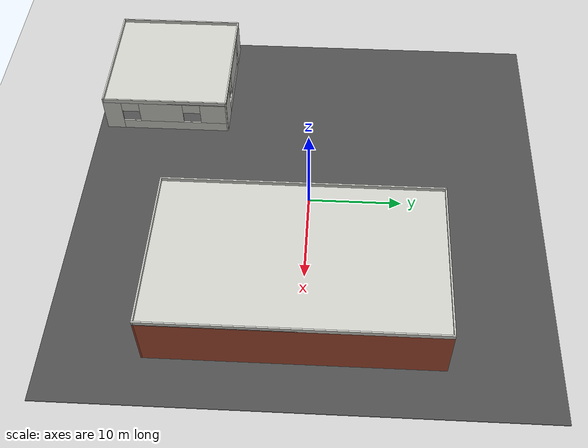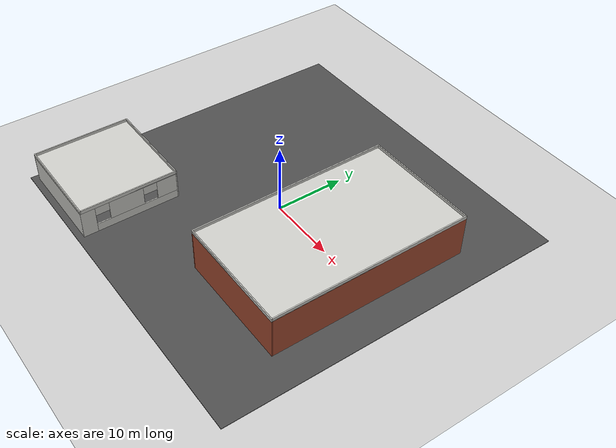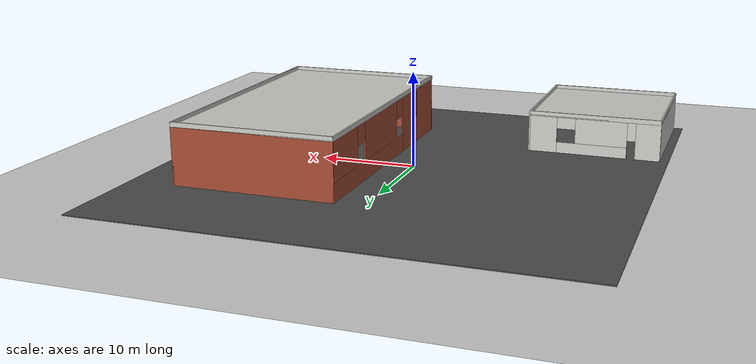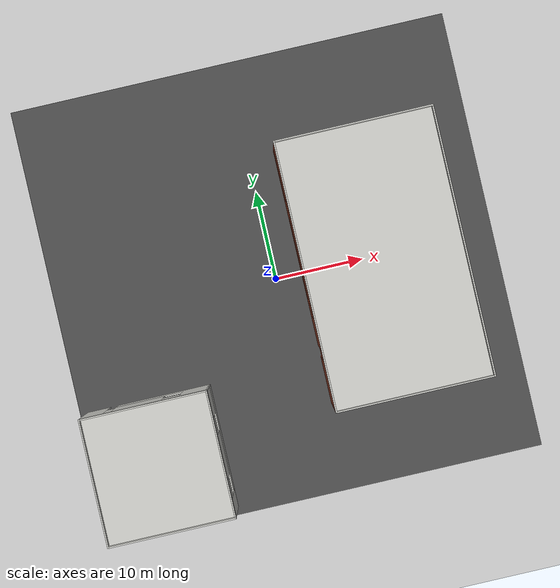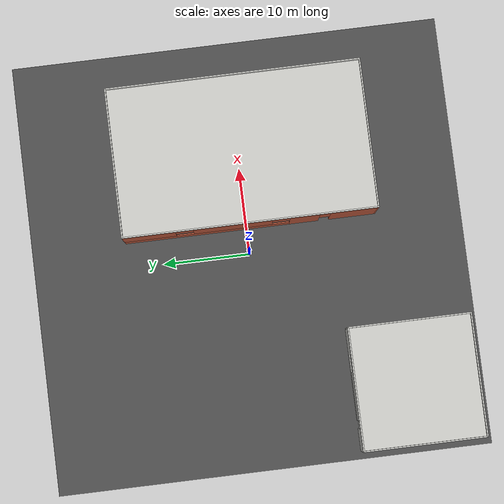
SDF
<sdf version="1.6">
 <world name="MECA_470">
  <light name="sun" type="directional">
   <pose>0 0 10 0 -0 0</pose>
   <diffuse>0.8 0.8 0.8 1</diffuse>
   <specular>0.2 0.2 0.2 1</specular>
   <attenuation>
    <range>1000</range>
    <constant>0.9</constant>
    <linear>0.01</linear>
    <quadratic>0.001</quadratic>
   </attenuation>
   <direction>-0.5 0.1 -0.9</direction>
  </light>
  <model name="ground_plane">
   <static>1</static>
   <link name="link">
    <collision name="collision">
     <geometry><plane><normal>0 0 1</normal><size>100 100</size></plane></geometry>
     <surface><friction><ode><mu>100</mu><mu2>50</mu2></ode></friction></surface>
    </collision>
    <visual name="visual">
     <cast_shadows>0</cast_shadows>
     <geometry><plane><normal>0 0 1</normal><size>100 100</size></plane></geometry>
     <material>
      <script><uri>file://media/materials/scripts/gazebo.material</uri><name>Gazebo/Grey</name></script>
     </material>
    </visual>
    <velocity_decay><linear>0</linear><angular>0</angular></velocity_decay>
   </link>
  </model>
  <physics name="default_physics" default="0" type="ode">
   <max_step_size>0.01</max_step_size>
   <real_time_factor>1</real_time_factor>
   <real_time_update_rate>100</real_time_update_rate>
  </physics>
  <scene><ambient>0.4 0.4 0.4 1</ambient><background>0.7 0.7 0.7 1</background><shadows>1</shadows></scene>
  <gravity>0 0 -9.8</gravity>
  <magnetic_field>6e-06 2.3e-05 -4.2e-05</magnetic_field>
  <atmosphere type="adiabatic"/>
  <spherical_coordinates>
   <surface_model>EARTH_WGS84</surface_model>
   <latitude_deg>0</latitude_deg>
   <longitude_deg>0</longitude_deg>
   <elevation>0</elevation>
   <heading_deg>0</heading_deg>
  </spherical_coordinates>
  <model name="asphalt_plane_0">
   <link name="link">
    <inertial>
     <mass>1</mass>
     <inertia><ixx>1</ixx><ixy>0</ixy><ixz>0</ixz><iyy>1</iyy><iyz>0</iyz><izz>1</izz></inertia>
    </inertial>
    <visual name="visual">
     <cast_shadows>0</cast_shadows>
     <geometry><box><size>50 50 0.1</size></box></geometry>
     <material>
      <script>
       <uri>model://asphalt_plane/materials/scripts</uri>
       <uri>model://asphalt_plane/materials/textures</uri>
       <name>vrc/asphalt</name>
      </script>
      <shader type="pixel"><normal_map>__default__</normal_map></shader>
      <ambient>0.5 0.5 0.5 1</ambient>
      <diffuse>0.5 0.5 0.5 1</diffuse>
      <specular>0.2 0.2 0.2 1</specular>
      <emissive>0 0 0 1</emissive>
     </material>
    </visual>
    <collision name="collision">
     <geometry><box><size>50 50 0.1</size></box></geometry>
     <surface>
      <friction>
       <ode><mu>1</mu><mu2>1</mu2><fdir1>0 0 0</fdir1><slip1>0</slip1><slip2>0</slip2></ode>
       <torsional>
        <coefficient>1</coefficient>
        <patch_radius>0</patch_radius>
        <surface_radius>0</surface_radius>
        <use_patch_radius>1</use_patch_radius>
        <ode><slip>0</slip></ode>
       </torsional>
      </friction>
      <bounce><restitution_coefficient>0</restitution_coefficient><threshold>1e+06</threshold></bounce>
      <contact>
       <collide_without_contact>0</collide_without_contact>
       <collide_without_contact_bitmask>1</collide_without_contact_bitmask>
       <collide_bitmask>1</collide_bitmask>
       <ode>
        <soft_cfm>0</soft_cfm>
        <soft_erp>0.2</soft_erp>
        <kp>1e+13</kp>
        <kd>1</kd>
        <max_vel>0.01</max_vel>
        <min_depth>0</min_depth>
       </ode>
       <bullet>
        <split_impulse>1</split_impulse>
        <split_impulse_penetration_threshold>-0.01</split_impulse_penetration_threshold>
        <soft_cfm>0</soft_cfm>
        <soft_erp>0.2</soft_erp>
        <kp>1e+13</kp>
        <kd>1</kd>
       </bullet>
      </contact>
     </surface>
    </collision>
   </link>
   <static>1</static>
  </model>
  <model name="Building_1_470">
   <pose>11.5 -0.5 0 0 -0 0</pose>
   <link name="Floor_2">
    <collision name="Floor_2_Collision">
     <geometry><box><size>17.15 29.15 0.1</size></box></geometry>
     <pose>0 0 0.05 0 -0 0</pose>
    </collision>
    <visual name="Floor_2_Visual">
     <pose>0 0 0.05 0 -0 0</pose>
     <geometry><box><size>17.15 29.15 0.1</size></box></geometry>
     <material>
      <script><uri>file://media/materials/scripts/gazebo.material</uri><name>Gazebo/CeilingTiled</name></script>
      <ambient>0.760784 0.662745 0.627451 1</ambient>
     </material>
     <meta><layer>1</layer></meta>
    </visual>
    <pose>0 0 6 0 -0 0</pose>
   </link>
   <link name="Wall_19">
    <collision name="Wall_19_Collision">
     <geometry><box><size>29.15 0.15 0.5</size></box></geometry>
     <pose>0 0 0.25 0 -0 0</pose>
    </collision>
    <visual name="Wall_19_Visual">
     <pose>0 0 0.25 0 -0 0</pose>
     <geometry><box><size>29.15 0.15 0.5</size></box></geometry>
     <material>
      <script><uri>file://media/materials/scripts/gazebo.material</uri><name>Gazebo/CeilingTiled</name></script>
      <ambient>0.760784 0.662745 0.627451 1</ambient>
     </material>
     <meta><layer>1</layer></meta>
    </visual>
    <pose>-8.5 0 6 0 -0 1.5708</pose>
   </link>
   <link name="Wall_20">
    <collision name="Wall_20_Collision">
     <geometry><box><size>17.15 0.15 0.5</size></box></geometry>
     <pose>0 0 0.25 0 -0 0</pose>
    </collision>
    <visual name="Wall_20_Visual">
     <pose>0 0 0.25 0 -0 0</pose>
     <geometry><box><size>17.15 0.15 0.5</size></box></geometry>
     <material>
      <script><uri>file://media/materials/scripts/gazebo.material</uri><name>Gazebo/CeilingTiled</name></script>
      <ambient>0.760784 0.662745 0.627451 1</ambient>
     </material>
     <meta><layer>1</layer></meta>
    </visual>
    <pose>0 14.5 6 0 -0 0</pose>
   </link>
   <link name="Wall_21">
    <collision name="Wall_21_Collision">
     <geometry><box><size>29.15 0.15 0.5</size></box></geometry>
     <pose>0 0 0.25 0 -0 0</pose>
    </collision>
    <visual name="Wall_21_Visual">
     <pose>0 0 0.25 0 -0 0</pose>
     <geometry><box><size>29.15 0.15 0.5</size></box></geometry>
     <material>
      <script><uri>file://media/materials/scripts/gazebo.material</uri><name>Gazebo/CeilingTiled</name></script>
      <ambient>0.760784 0.662745 0.627451 1</ambient>
     </material>
     <meta><layer>1</layer></meta>
    </visual>
    <pose>8.5 0 6 0 0 -1.5708</pose>
   </link>
   <link name="Wall_22">
    <collision name="Wall_22_Collision">
     <geometry><box><size>17.15 0.15 0.5</size></box></geometry>
     <pose>0 0 0.25 0 -0 0</pose>
    </collision>
    <visual name="Wall_22_Visual">
     <pose>0 0 0.25 0 -0 0</pose>
     <geometry><box><size>17.15 0.15 0.5</size></box></geometry>
     <material>
      <script><uri>file://media/materials/scripts/gazebo.material</uri><name>Gazebo/CeilingTiled</name></script>
      <ambient>0.760784 0.662745 0.627451 1</ambient>
     </material>
     <meta><layer>1</layer></meta>
    </visual>
    <pose>0 -14.5 6 0 -0 3.14159</pose>
   </link>
   <link name="Wall_6">
    <pose>-8.5 0 0 0 -0 1.5708</pose>
    <visual name="Wall_6_Visual_0">
     <pose>-11.8375 0 3 0 -0 0</pose>
     <geometry><box><size>5.475 0.15 6</size></box></geometry>
     <material>
      <script><uri>file://media/materials/scripts/gazebo.material</uri><name>Gazebo/Bricks</name></script>
      <ambient>1 1 1 1</ambient>
     </material>
     <meta><layer>0</layer></meta>
    </visual>
    <collision name="Wall_6_Collision_0">
     <geometry><box><size>5.475 0.15 6</size></box></geometry>
     <pose>-11.8375 0 3 0 -0 0</pose>
    </collision>
    <visual name="Wall_6_Visual_1">
     <pose>-6.2 0 3 0 -0 0</pose>
     <geometry><box><size>3.4 0.15 6</size></box></geometry>
     <material>
      <script><uri>file://media/materials/scripts/gazebo.material</uri><name>Gazebo/Bricks</name></script>
      <ambient>1 1 1 1</ambient>
     </material>
     <meta><layer>0</layer></meta>
    </visual>
    <collision name="Wall_6_Collision_1">
     <geometry><box><size>3.4 0.15 6</size></box></geometry>
     <pose>-6.2 0 3 0 -0 0</pose>
    </collision>
    <visual name="Wall_6_Visual_2">
     <pose>5.0375 0 1 0 -0 0</pose>
     <geometry><box><size>19.075 0.15 2</size></box></geometry>
     <material>
      <script><uri>file://media/materials/scripts/gazebo.material</uri><name>Gazebo/Bricks</name></script>
      <ambient>1 1 1 1</ambient>
     </material>
     <meta><layer>0</layer></meta>
    </visual>
    <collision name="Wall_6_Collision_2">
     <geometry><box><size>19.075 0.15 2</size></box></geometry>
     <pose>5.0375 0 1 0 -0 0</pose>
    </collision>
    <visual name="Wall_6_Visual_3">
     <pose>2 0 4 0 -0 0</pose>
     <geometry><box><size>9 0.15 4</size></box></geometry>
     <material>
      <script><uri>file://media/materials/scripts/gazebo.material</uri><name>Gazebo/Bricks</name></script>
      <ambient>1 1 1 1</ambient>
     </material>
     <meta><layer>0</layer></meta>
    </visual>
    <collision name="Wall_6_Collision_3">
     <geometry><box><size>9 0.15 4</size></box></geometry>
     <pose>2 0 4 0 -0 0</pose>
    </collision>
    <visual name="Wall_6_Visual_4">
     <pose>11.5375 0 4 0 -0 0</pose>
     <geometry><box><size>6.075 0.15 4</size></box></geometry>
     <material>
      <script><uri>file://media/materials/scripts/gazebo.material</uri><name>Gazebo/Bricks</name></script>
      <ambient>1 1 1 1</ambient>
     </material>
     <meta><layer>0</layer></meta>
    </visual>
    <collision name="Wall_6_Collision_4">
     <geometry><box><size>6.075 0.15 4</size></box></geometry>
     <pose>11.5375 0 4 0 -0 0</pose>
    </collision>
    <visual name="Wall_6_Visual_5">
     <pose>-8.5 0 4.5 0 -0 0</pose>
     <geometry><box><size>1.2 0.15 3</size></box></geometry>
     <material>
      <script><uri>file://media/materials/scripts/gazebo.material</uri><name>Gazebo/Bricks</name></script>
      <ambient>1 1 1 1</ambient>
     </material>
     <meta><layer>0</layer></meta>
    </visual>
    <collision name="Wall_6_Collision_5">
     <geometry><box><size>1.2 0.15 3</size></box></geometry>
     <pose>-8.5 0 4.5 0 -0 0</pose>
    </collision>
    <visual name="Wall_6_Visual_6">
     <pose>-3.5 0 5 0 -0 0</pose>
     <geometry><box><size>2 0.15 2</size></box></geometry>
     <material>
      <script><uri>file://media/materials/scripts/gazebo.material</uri><name>Gazebo/Bricks</name></script>
      <ambient>1 1 1 1</ambient>
     </material>
     <meta><layer>0</layer></meta>
    </visual>
    <collision name="Wall_6_Collision_6">
     <geometry><box><size>2 0.15 2</size></box></geometry>
     <pose>-3.5 0 5 0 -0 0</pose>
    </collision>
    <visual name="Wall_6_Visual_7">
     <pose>7.5 0 5 0 -0 0</pose>
     <geometry><box><size>2 0.15 2</size></box></geometry>
     <material>
      <script><uri>file://media/materials/scripts/gazebo.material</uri><name>Gazebo/Bricks</name></script>
      <ambient>1 1 1 1</ambient>
     </material>
     <meta><layer>0</layer></meta>
    </visual>
    <collision name="Wall_6_Collision_7">
     <geometry><box><size>2 0.15 2</size></box></geometry>
     <pose>7.5 0 5 0 -0 0</pose>
    </collision>
   </link>
   <link name="Wall_7">
    <collision name="Wall_7_Collision">
     <geometry><box><size>17.15 0.15 6</size></box></geometry>
     <pose>0 0 3 0 -0 0</pose>
    </collision>
    <visual name="Wall_7_Visual">
     <pose>0 0 3 0 -0 0</pose>
     <geometry><box><size>17.15 0.15 6</size></box></geometry>
     <material>
      <script><uri>file://media/materials/scripts/gazebo.material</uri><name>Gazebo/Bricks</name></script>
      <ambient>1 1 1 1</ambient>
     </material>
     <meta><layer>0</layer></meta>
    </visual>
    <pose>0 14.5 0 0 -0 0</pose>
   </link>
   <link name="Wall_8">
    <collision name="Wall_8_Collision">
     <geometry><box><size>29.15 0.15 6</size></box></geometry>
     <pose>0 0 3 0 -0 0</pose>
    </collision>
    <visual name="Wall_8_Visual">
     <pose>0 0 3 0 -0 0</pose>
     <geometry><box><size>29.15 0.15 6</size></box></geometry>
     <material>
      <script><uri>file://media/materials/scripts/gazebo.material</uri><name>Gazebo/Bricks</name></script>
      <ambient>1 1 1 1</ambient>
     </material>
     <meta><layer>0</layer></meta>
    </visual>
    <pose>8.5 0 0 0 0 -1.5708</pose>
   </link>
   <link name="Wall_9">
    <collision name="Wall_9_Collision">
     <geometry><box><size>17.15 0.15 6</size></box></geometry>
     <pose>0 0 3 0 -0 0</pose>
    </collision>
    <visual name="Wall_9_Visual">
     <pose>0 0 3 0 -0 0</pose>
     <geometry><box><size>17.15 0.15 6</size></box></geometry>
     <material>
      <script><uri>file://media/materials/scripts/gazebo.material</uri><name>Gazebo/Bricks</name></script>
      <ambient>1 1 1 1</ambient>
     </material>
     <meta><layer>0</layer></meta>
    </visual>
    <pose>0 -14.5 0 0 -0 3.14159</pose>
   </link>
   <static>1</static>
  </model>
  <model name="Building_2_470">
   <pose>-16.9997 -17 0 0 -0 0</pose>
   <link name="Floor_3">
    <collision name="Floor_3_Collision">
     <geometry><box><size>14.15 14.15 0.1</size></box></geometry>
     <pose>0 0 0.05 0 -0 0</pose>
    </collision>
    <visual name="Floor_3_Visual">
     <pose>0 0 0.05 0 -0 0</pose>
     <geometry><box><size>14.15 14.15 0.1</size></box></geometry>
     <material>
      <script><uri>file://media/materials/scripts/gazebo.material</uri><name>Gazebo/CeilingTiled</name></script>
      <ambient>0.921569 0.807843 0.615686 1</ambient>
     </material>
     <meta><layer>1</layer></meta>
    </visual>
    <pose>-0.000252 0 4 0 -0 0</pose>
   </link>
   <link name="Wall_26">
    <collision name="Wall_26_Collision">
     <geometry><box><size>14.15 0.15 4</size></box></geometry>
     <pose>0 0 2 0 -0 0</pose>
    </collision>
    <visual name="Wall_26_Visual">
     <pose>0 0 2 0 -0 0</pose>
     <geometry><box><size>14.15 0.15 4</size></box></geometry>
     <material>
      <script><uri>file://media/materials/scripts/gazebo.material</uri><name>Gazebo/CeilingTiled</name></script>
      <ambient>1 1 1 1</ambient>
     </material>
     <meta><layer>0</layer></meta>
    </visual>
    <pose>-7.00025 0 0 0 0 -1.5708</pose>
   </link>
   <link name="Wall_27">
    <collision name="Wall_27_Collision">
     <geometry><box><size>14.15 0.15 4</size></box></geometry>
     <pose>0 0 2 0 -0 0</pose>
    </collision>
    <visual name="Wall_27_Visual">
     <pose>0 0 2 0 -0 0</pose>
     <geometry><box><size>14.15 0.15 4</size></box></geometry>
     <material>
      <script><uri>file://media/materials/scripts/gazebo.material</uri><name>Gazebo/CeilingTiled</name></script>
      <ambient>1 1 1 1</ambient>
     </material>
     <meta><layer>0</layer></meta>
    </visual>
    <pose>0.000247 -7 0 0 -0 0</pose>
   </link>
   <link name="Wall_28">
    <pose>7.00025 0 0 0 -0 1.57087</pose>
    <visual name="Wall_28_Visual_0">
     <pose>-6.0375 0 2 0 -0 0</pose>
     <geometry><box><size>2.075 0.15 4</size></box></geometry>
     <material>
      <script><uri>file://media/materials/scripts/gazebo.material</uri><name>Gazebo/CeilingTiled</name></script>
      <ambient>1 1 1 1</ambient>
     </material>
     <meta><layer>0</layer></meta>
    </visual>
    <collision name="Wall_28_Collision_0">
     <geometry><box><size>2.075 0.15 4</size></box></geometry>
     <pose>-6.0375 0 2 0 -0 0</pose>
    </collision>
    <visual name="Wall_28_Visual_1">
     <pose>1.0375 0 0.625 0 -0 0</pose>
     <geometry><box><size>12.075 0.15 1.25</size></box></geometry>
     <material>
      <script><uri>file://media/materials/scripts/gazebo.material</uri><name>Gazebo/CeilingTiled</name></script>
      <ambient>1 1 1 1</ambient>
     </material>
     <meta><layer>0</layer></meta>
    </visual>
    <collision name="Wall_28_Collision_1">
     <geometry><box><size>12.075 0.15 1.25</size></box></geometry>
     <pose>1.0375 0 0.625 0 -0 0</pose>
    </collision>
    <visual name="Wall_28_Visual_2">
     <pose>-0.5 0 2.625 0 -0 0</pose>
     <geometry><box><size>5 0.15 2.75</size></box></geometry>
     <material>
      <script><uri>file://media/materials/scripts/gazebo.material</uri><name>Gazebo/CeilingTiled</name></script>
      <ambient>1 1 1 1</ambient>
     </material>
     <meta><layer>0</layer></meta>
    </visual>
    <collision name="Wall_28_Collision_2">
     <geometry><box><size>5 0.15 2.75</size></box></geometry>
     <pose>-0.5 0 2.625 0 -0 0</pose>
    </collision>
    <visual name="Wall_28_Visual_3">
     <pose>5.5375 0 2.625 0 -0 0</pose>
     <geometry><box><size>3.075 0.15 2.75</size></box></geometry>
     <material>
      <script><uri>file://media/materials/scripts/gazebo.material</uri><name>Gazebo/CeilingTiled</name></script>
      <ambient>1 1 1 1</ambient>
     </material>
     <meta><layer>0</layer></meta>
    </visual>
    <collision name="Wall_28_Collision_3">
     <geometry><box><size>3.075 0.15 2.75</size></box></geometry>
     <pose>5.5375 0 2.625 0 -0 0</pose>
    </collision>
    <visual name="Wall_28_Visual_4">
     <pose>-4 0 3.375 0 -0 0</pose>
     <geometry><box><size>2 0.15 1.25</size></box></geometry>
     <material>
      <script><uri>file://media/materials/scripts/gazebo.material</uri><name>Gazebo/CeilingTiled</name></script>
      <ambient>1 1 1 1</ambient>
     </material>
     <meta><layer>0</layer></meta>
    </visual>
    <collision name="Wall_28_Collision_4">
     <geometry><box><size>2 0.15 1.25</size></box></geometry>
     <pose>-4 0 3.375 0 -0 0</pose>
    </collision>
    <visual name="Wall_28_Visual_5">
     <pose>3 0 3.375 0 -0 0</pose>
     <geometry><box><size>2 0.15 1.25</size></box></geometry>
     <material>
      <script><uri>file://media/materials/scripts/gazebo.material</uri><name>Gazebo/CeilingTiled</name></script>
      <ambient>1 1 1 1</ambient>
     </material>
     <meta><layer>0</layer></meta>
    </visual>
    <collision name="Wall_28_Collision_5">
     <geometry><box><size>2 0.15 1.25</size></box></geometry>
     <pose>3 0 3.375 0 -0 0</pose>
    </collision>
   </link>
   <link name="Wall_29">
    <pose>-0.000252 7 0 0 -0 3.14159</pose>
    <visual name="Wall_29_Visual_0">
     <pose>-5.5375 0 2 0 -0 0</pose>
     <geometry><box><size>3.075 0.15 4</size></box></geometry>
     <material>
      <script><uri>file://media/materials/scripts/gazebo.material</uri><name>Gazebo/CeilingTiled</name></script>
      <ambient>1 1 1 1</ambient>
     </material>
     <meta><layer>0</layer></meta>
    </visual>
    <collision name="Wall_29_Collision_0">
     <geometry><box><size>3.075 0.15 4</size></box></geometry>
     <pose>-5.5375 0 2 0 -0 0</pose>
    </collision>
    <visual name="Wall_29_Visual_1">
     <pose>5.7625 0 2 0 -0 0</pose>
     <geometry><box><size>2.625 0.15 4</size></box></geometry>
     <material>
      <script><uri>file://media/materials/scripts/gazebo.material</uri><name>Gazebo/CeilingTiled</name></script>
      <ambient>1 1 1 1</ambient>
     </material>
     <meta><layer>0</layer></meta>
    </visual>
    <collision name="Wall_29_Collision_1">
     <geometry><box><size>2.625 0.15 4</size></box></geometry>
     <pose>5.7625 0 2 0 -0 0</pose>
    </collision>
    <visual name="Wall_29_Visual_2">
     <pose>-0.225 0 0.625 0 -0 0</pose>
     <geometry><box><size>7.55 0.15 1.25</size></box></geometry>
     <material>
      <script><uri>file://media/materials/scripts/gazebo.material</uri><name>Gazebo/CeilingTiled</name></script>
      <ambient>1 1 1 1</ambient>
     </material>
     <meta><layer>0</layer></meta>
    </visual>
    <collision name="Wall_29_Collision_2">
     <geometry><box><size>7.55 0.15 1.25</size></box></geometry>
     <pose>-0.225 0 0.625 0 -0 0</pose>
    </collision>
    <visual name="Wall_29_Visual_3">
     <pose>0.775 0 2.625 0 -0 0</pose>
     <geometry><box><size>5.55 0.15 2.75</size></box></geometry>
     <material>
      <script><uri>file://media/materials/scripts/gazebo.material</uri><name>Gazebo/CeilingTiled</name></script>
      <ambient>1 1 1 1</ambient>
     </material>
     <meta><layer>0</layer></meta>
    </visual>
    <collision name="Wall_29_Collision_3">
     <geometry><box><size>5.55 0.15 2.75</size></box></geometry>
     <pose>0.775 0 2.625 0 -0 0</pose>
    </collision>
    <visual name="Wall_29_Visual_4">
     <pose>4 0 3 0 -0 0</pose>
     <geometry><box><size>0.9 0.15 2</size></box></geometry>
     <material>
      <script><uri>file://media/materials/scripts/gazebo.material</uri><name>Gazebo/CeilingTiled</name></script>
      <ambient>1 1 1 1</ambient>
     </material>
     <meta><layer>0</layer></meta>
    </visual>
    <collision name="Wall_29_Collision_4">
     <geometry><box><size>0.9 0.15 2</size></box></geometry>
     <pose>4 0 3 0 -0 0</pose>
    </collision>
    <visual name="Wall_29_Visual_5">
     <pose>-3 0 3.375 0 -0 0</pose>
     <geometry><box><size>2 0.15 1.25</size></box></geometry>
     <material>
      <script><uri>file://media/materials/scripts/gazebo.material</uri><name>Gazebo/CeilingTiled</name></script>
      <ambient>1 1 1 1</ambient>
     </material>
     <meta><layer>0</layer></meta>
    </visual>
    <collision name="Wall_29_Collision_5">
     <geometry><box><size>2 0.15 1.25</size></box></geometry>
     <pose>-3 0 3.375 0 -0 0</pose>
    </collision>
   </link>
   <link name="Wall_31">
    <collision name="Wall_31_Collision">
     <geometry><box><size>14.15 0.15 0.5</size></box></geometry>
     <pose>0 0 0.25 0 -0 0</pose>
    </collision>
    <visual name="Wall_31_Visual">
     <pose>0 0 0.25 0 -0 0</pose>
     <geometry><box><size>14.15 0.15 0.5</size></box></geometry>
     <material>
      <script><uri>file://media/materials/scripts/gazebo.material</uri><name>Gazebo/CeilingTiled</name></script>
      <ambient>1 1 1 1</ambient>
     </material>
     <meta><layer>1</layer></meta>
    </visual>
    <pose>-7.00025 0 4 0 0 -1.5708</pose>
   </link>
   <link name="Wall_32">
    <collision name="Wall_32_Collision">
     <geometry><box><size>14.151 0.15 0.5</size></box></geometry>
     <pose>0 0 0.25 0 -0 0</pose>
    </collision>
    <visual name="Wall_32_Visual">
     <pose>0 0 0.25 0 -0 0</pose>
     <geometry><box><size>14.151 0.15 0.5</size></box></geometry>
     <material>
      <script><uri>file://media/materials/scripts/gazebo.material</uri><name>Gazebo/CeilingTiled</name></script>
      <ambient>1 1 1 1</ambient>
     </material>
     <meta><layer>1</layer></meta>
    </visual>
    <pose>-0.000252 -7 4 0 -0 0</pose>
   </link>
   <link name="Wall_33">
    <collision name="Wall_33_Collision">
     <geometry><box><size>14.15 0.15 0.5</size></box></geometry>
     <pose>0 0 0.25 0 -0 0</pose>
    </collision>
    <visual name="Wall_33_Visual">
     <pose>0 0 0.25 0 -0 0</pose>
     <geometry><box><size>14.15 0.15 0.5</size></box></geometry>
     <material>
      <script><uri>file://media/materials/scripts/gazebo.material</uri><name>Gazebo/CeilingTiled</name></script>
      <ambient>1 1 1 1</ambient>
     </material>
     <meta><layer>1</layer></meta>
    </visual>
    <pose>6.99975 0 4 0 -0 1.5708</pose>
   </link>
   <link name="Wall_34">
    <collision name="Wall_34_Collision">
     <geometry><box><size>14.15 0.15 0.5</size></box></geometry>
     <pose>0 0 0.25 0 -0 0</pose>
    </collision>
    <visual name="Wall_34_Visual">
     <pose>0 0 0.25 0 -0 0</pose>
     <geometry><box><size>14.15 0.15 0.5</size></box></geometry>
     <material>
      <script><uri>file://media/materials/scripts/gazebo.material</uri><name>Gazebo/CeilingTiled</name></script>
      <ambient>1 1 1 1</ambient>
     </material>
     <meta><layer>1</layer></meta>
    </visual>
    <pose>-0.000252 7 4 0 -0 3.14159</pose>
   </link>
   <static>1</static>
  </model>
 </world>
</sdf>
